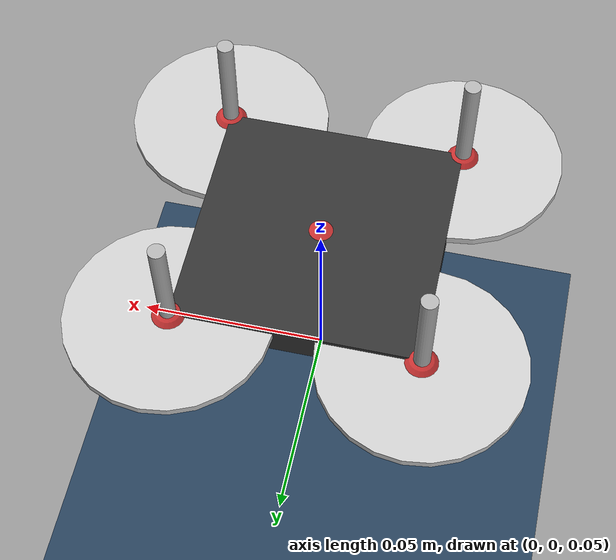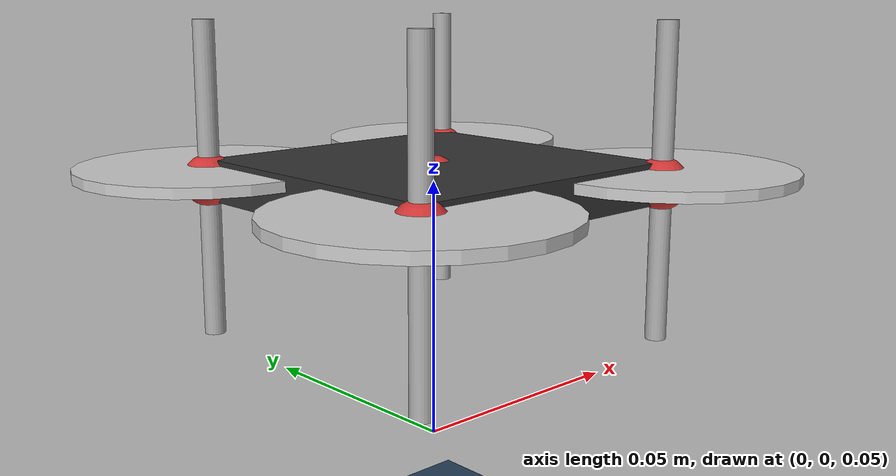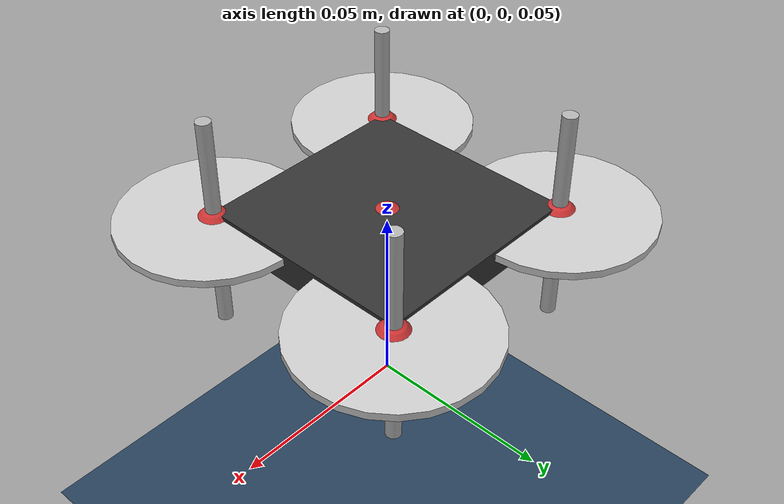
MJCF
<?xml version="1.0" ?>
<mujoco model="crazyflie_standard">
    <compiler angle="radian" coordinate="local" inertiafromgeom="true"/>

    <option gravity="0 0 -9.81" density="1.293" viscosity="1.85e-5" integrator="RK4"/>

    <default>
        <joint damping="0.001" armature="0.001"/>
        <motor ctrlrange="0 1" ctrllimited="true"/>
        <site size="0.005" rgba="0.8 0.2 0.2 1"/>
    </default>

    <asset>
        <mesh name="arm" file="meshes/arm.stl" scale="1 1 1"/>
        <mesh name="motor" file="meshes/motor.stl" scale="1 1 1"/>
        <material name="body" rgba="0.2 0.2 0.2 1"/>
        <material name="arm" rgba="0.7 0.7 0.7 1"/>
        <material name="rotor" rgba="0.8 0.8 0.8 1"/>
        <texture name="grid" type="2d" builtin="checker" rgb1=".1 .2 .3" rgb2=".2 .3 .4" width="512" height="512"/>
        <material name="grid" texture="grid" texrepeat="1 1" texuniform="true" reflectance=".2"/>
    </asset>

    <worldbody>
        <light diffuse="0.6 0.6 0.6" pos="0 0 3" dir="0 0 -1"/>
        <camera name="fixed" pos="2 0 1" xyaxes="-1 0 0 0 1 0"/>
        <camera name="onboard" pos="0 0 0" xyaxes="0 -1 0 0 0 1"/>

        <!-- Ground plane with grid texture -->
        <geom name="floor" type="plane" material="grid" pos="0 0 0" size="5 5 0.1"/>

        <body name="quadcopter" pos="0 0 0.1">
            <joint name="root_x" type="slide" axis="1 0 0" pos="0 0 0"/>
            <joint name="root_y" type="slide" axis="0 1 0" pos="0 0 0"/>
            <joint name="root_z" type="slide" axis="0 0 1" pos="0 0 0"/>
            <joint name="root_rotx" type="hinge" axis="1 0 0" pos="0 0 0"/>
            <joint name="root_roty" type="hinge" axis="0 1 0" pos="0 0 0"/>
            <joint name="root_rotz" type="hinge" axis="0 0 1" pos="0 0 0"/>

            <!-- Central body -->
            <geom type="box" size="0.03 0.03 0.004" material="body" mass="0.025"/>

            <!-- Arms -->
            <body name="arm1" pos="0.03 0.03 0">
                <geom type="cylinder" size="0.002 0.03" pos="0 0 0" quat="0.924 0 0 0.383" material="arm" mass="0.001"/>
                <site name="motor1" pos="0 0 0"/>
                <geom name="prop1" type="cylinder" size="0.025 0.001" pos="0 0 0.002" material="rotor" mass="0.001"/>
            </body>
            <body name="arm2" pos="-0.03 0.03 0">
                <geom type="cylinder" size="0.002 0.03" pos="0 0 0" quat="0.383 0 0 0.924" material="arm" mass="0.001"/>
                <site name="motor2" pos="0 0 0"/>
                <geom name="prop2" type="cylinder" size="0.025 0.001" pos="0 0 0.002" material="rotor" mass="0.001"/>
            </body>
            <body name="arm3" pos="-0.03 -0.03 0">
                <geom type="cylinder" size="0.002 0.03" pos="0 0 0" quat="0.924 0 0 -0.383" material="arm" mass="0.001"/>
                <site name="motor3" pos="0 0 0"/>
                <geom name="prop3" type="cylinder" size="0.025 0.001" pos="0 0 0.002" material="rotor" mass="0.001"/>
            </body>
            <body name="arm4" pos="0.03 -0.03 0">
                <geom type="cylinder" size="0.002 0.03" pos="0 0 0" quat="0.383 0 0 -0.924" material="arm" mass="0.001"/>
                <site name="motor4" pos="0 0 0"/>
                <geom name="prop4" type="cylinder" size="0.025 0.001" pos="0 0 0.002" material="rotor" mass="0.001"/>
            </body>

            <!-- Sensors -->
            <site name="imu" pos="0 0 0"/>
            <camera name="rgbd" pos="0 0 -0.02" xyaxes="0 -1 0 0 0 -1" fovy="60"/>
        </body>
    </worldbody>

    <actuator>
        <motor name="motor1" site="motor1" gear="0.1 0 0 0 0 1"/>
        <motor name="motor2" site="motor2" gear="0.1 0 0 0 0 -1"/>
        <motor name="motor3" site="motor3" gear="0.1 0 0 0 0 1"/>
        <motor name="motor4" site="motor4" gear="0.1 0 0 0 0 -1"/>
    </actuator>

    <sensor>
        <accelerometer name="accelerometer" site="imu"/>
        <gyro name="gyro" site="imu"/>
        <velocimeter name="velocimeter" site="imu"/>
        <force name="force1" site="motor1"/>
        <force name="force2" site="motor2"/>
        <force name="force3" site="motor3"/>
        <force name="force4" site="motor4"/>
        <torque name="torque1" site="motor1"/>
        <torque name="torque2" site="motor2"/>
        <torque name="torque3" site="motor3"/>
        <torque name="torque4" site="motor4"/>
        <framequat name="orientation" objtype="site" objname="imu"/>
        <camera name="rgb" mode="rgb" camera="rgbd"/>
        <camera name="depth" mode="depth" camera="rgbd"/>
    </sensor>
</mujoco>
